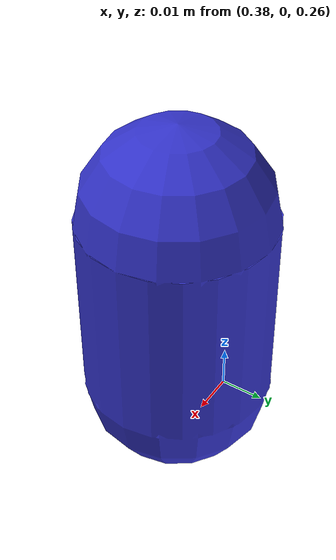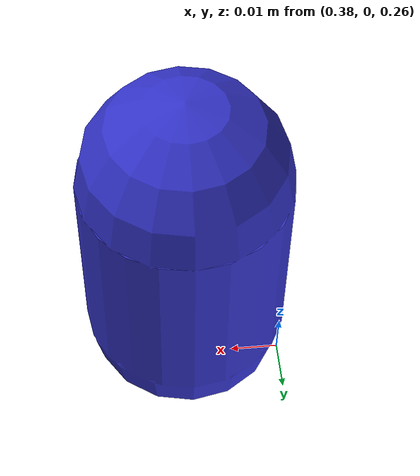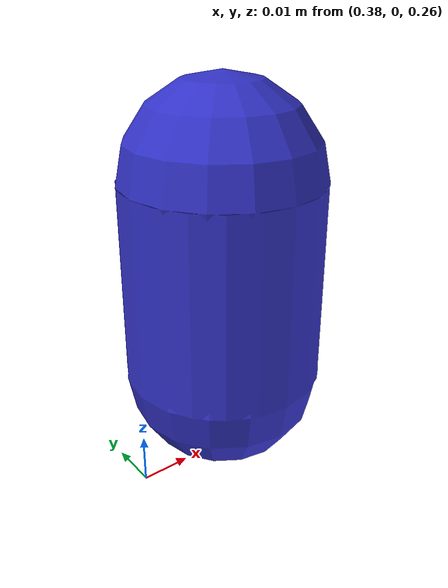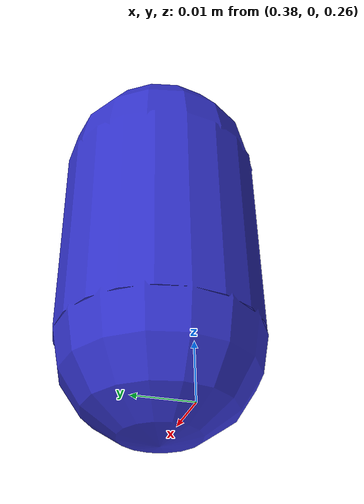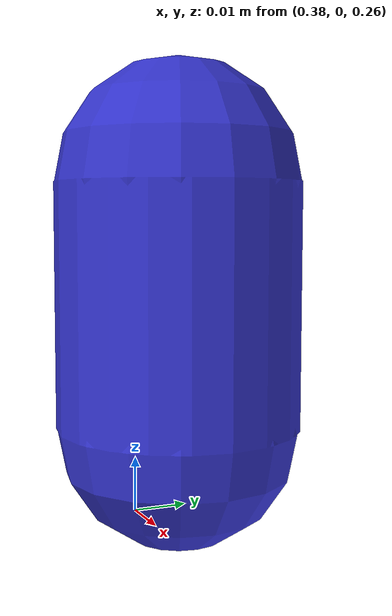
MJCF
<mujoco model="disc">
  <worldbody>
    <body name="disc" pos="0.4 0 0.3">
      <freejoint name="disc_joint" />
      <geom type="capsule" name="disc_geom" size="0.02 0.02" mass="0.05" rgba="0.2 0.2 0.8 1.0" condim="3" friction="1 0.03 0.003" contype="1" conaffinity="1" solref="0.01 1" />
      <site name="object_site" pos="0 0 0" size="0.01" rgba="1 0 0 1" />
    </body>

  </worldbody>
</mujoco>
